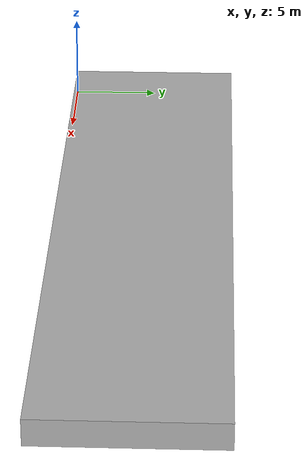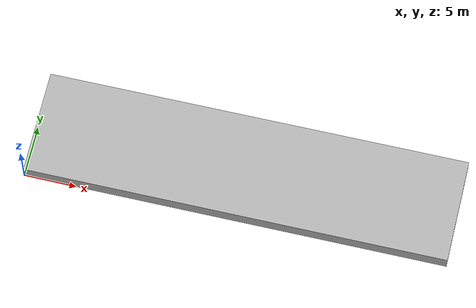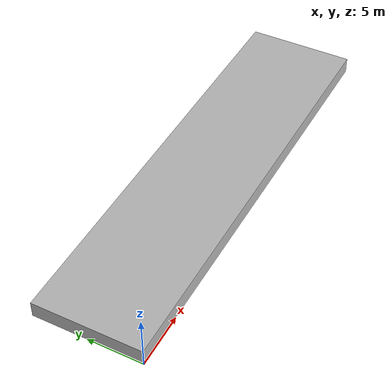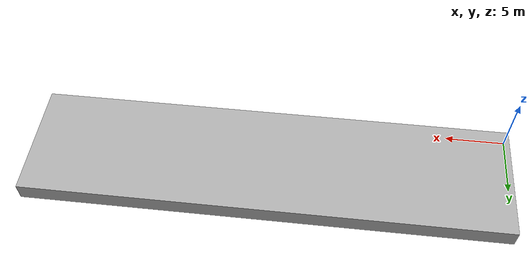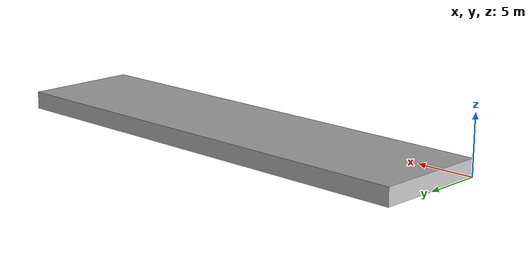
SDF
<?xml version="1.0" ?>
<sdf version="1.6">
  <model name="platform">
    <static>true</static>
    <link name="link">
      <visual name="visual">
        <geometry>
          <mesh>
            <uri>model://platform/meshes/platform_.stl</uri>
            <scale>0.1 0.1 0.1</scale>
          </mesh>
        </geometry>
      </visual>
    </link>
  </model>
</sdf>
